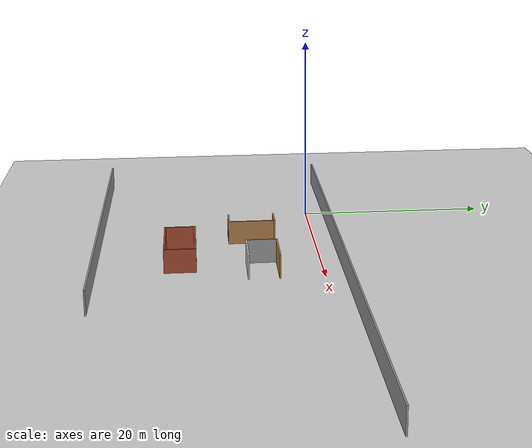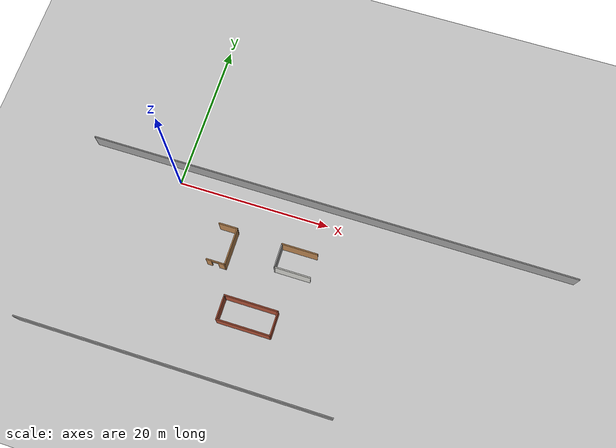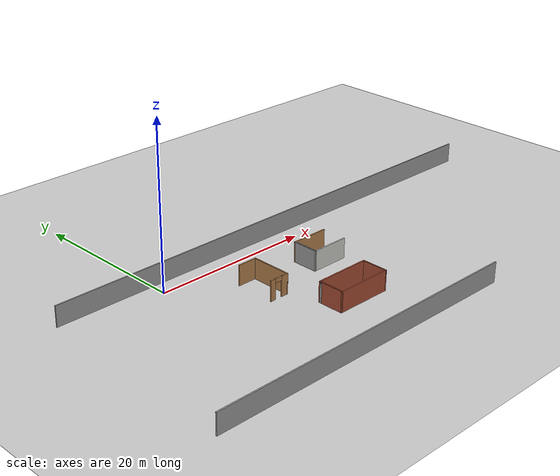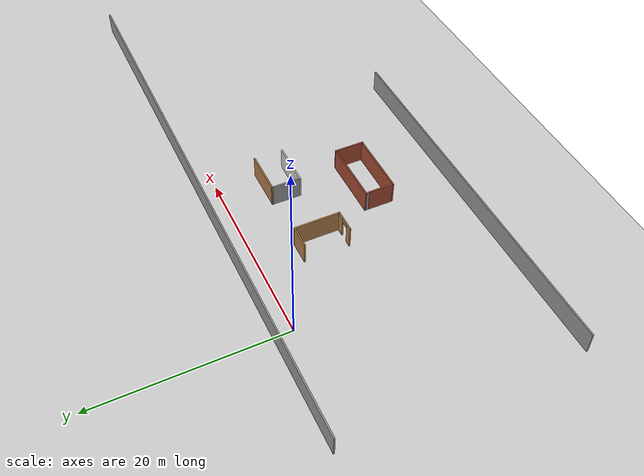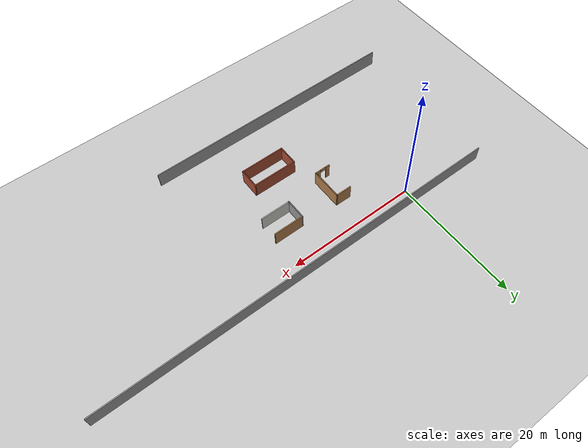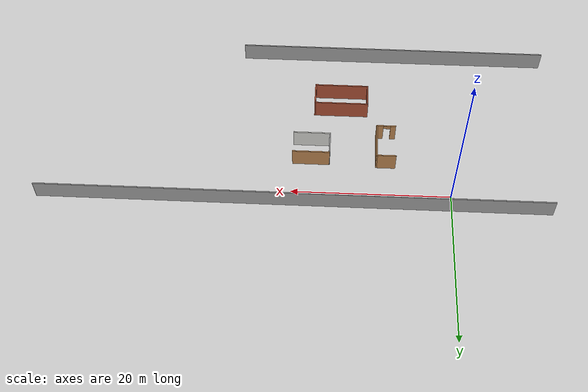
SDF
<sdf version="1.7">
 <world name="default">
  <model name="ground_plane">
   <static>1</static>
   <link name="link">
    <collision name="collision">
     <geometry><plane><normal>0 0 1</normal><size>150 100</size></plane></geometry>
     <surface>
      <contact><collide_bitmask>65535</collide_bitmask></contact>
      <friction><ode><mu>100</mu><mu2>50</mu2></ode></friction>
     </surface>
    </collision>
    <visual name="visual">
     <cast_shadows>0</cast_shadows>
     <geometry><plane><normal>0 0 1</normal><size>150 100</size></plane></geometry>
     <material>
      <script><uri>file://media/materials/scripts/gazebo.material</uri><name>Gazebo/Grey</name></script>
     </material>
    </visual>
   </link>
  </model>
  <model name="slam_world_test.world">
   <link name="Wall_0">
    <pose>0.980896 1.21795 0 0 -0 0</pose>
    <visual name="Wall_0_Visual_2">
     <pose>-0.112099 0 2.25 0 -0 0</pose>
     <geometry><box><size>0.9 0.15 0.5</size></box></geometry>
     <material>
      <script><uri>file://media/materials/scripts/gazebo.material</uri><name>Gazebo/Wood</name></script>
      <ambient>1 1 1 1</ambient>
      <shader type="pixel"/>
     </material>
     <meta><layer>0</layer></meta>
    </visual>
    <visual name="Wall_0_Visual_1">
     <pose>0.79395 0 1.25 0 -0 0</pose>
     <geometry><box><size>0.912099 0.15 2.5</size></box></geometry>
     <material>
      <script><uri>file://media/materials/scripts/gazebo.material</uri><name>Gazebo/Wood</name></script>
      <ambient>1 1 1 1</ambient>
      <shader type="pixel"/>
     </material>
     <meta><layer>0</layer></meta>
    </visual>
    <visual name="Wall_0_Visual_0">
     <pose>-0.90605 0 1.25 0 -0 0</pose>
     <geometry><box><size>0.687901 0.15 2.5</size></box></geometry>
     <material>
      <script><uri>file://media/materials/scripts/gazebo.material</uri><name>Gazebo/Wood</name></script>
      <ambient>1 1 1 1</ambient>
      <shader type="pixel"/>
     </material>
     <meta><layer>0</layer></meta>
    </visual>
    <collision name="Wall_0_Collision_2">
     <pose>-0.112099 0 2.25 0 -0 0</pose>
     <geometry><box><size>0.9 0.15 0.5</size></box></geometry>
     <surface>
      <friction>
       <ode><mu>1</mu><mu2>1</mu2><fdir1>0 0 0</fdir1><slip1>0</slip1><slip2>0</slip2></ode>
       <torsional>
        <coefficient>1</coefficient>
        <patch_radius>0</patch_radius>
        <surface_radius>0</surface_radius>
        <use_patch_radius>1</use_patch_radius>
        <ode><slip>0</slip></ode>
       </torsional>
      </friction>
      <bounce><restitution_coefficient>0</restitution_coefficient><threshold>1e+06</threshold></bounce>
      <contact>
       <collide_without_contact>0</collide_without_contact>
       <collide_without_contact_bitmask>1</collide_without_contact_bitmask>
       <collide_bitmask>1</collide_bitmask>
       <ode>
        <soft_cfm>0</soft_cfm>
        <soft_erp>0.2</soft_erp>
        <kp>1e+13</kp>
        <kd>1</kd>
        <max_vel>0.01</max_vel>
        <min_depth>0</min_depth>
       </ode>
       <bullet>
        <split_impulse>1</split_impulse>
        <split_impulse_penetration_threshold>-0.01</split_impulse_penetration_threshold>
        <soft_cfm>0</soft_cfm>
        <soft_erp>0.2</soft_erp>
        <kp>1e+13</kp>
        <kd>1</kd>
       </bullet>
      </contact>
     </surface>
    </collision>
    <collision name="Wall_0_Collision_0">
     <pose>-0.90605 0 1.25 0 -0 0</pose>
     <geometry><box><size>0.687901 0.15 2.5</size></box></geometry>
     <surface>
      <friction>
       <ode><mu>1</mu><mu2>1</mu2><fdir1>0 0 0</fdir1><slip1>0</slip1><slip2>0</slip2></ode>
       <torsional>
        <coefficient>1</coefficient>
        <patch_radius>0</patch_radius>
        <surface_radius>0</surface_radius>
        <use_patch_radius>1</use_patch_radius>
        <ode><slip>0</slip></ode>
       </torsional>
      </friction>
      <bounce><restitution_coefficient>0</restitution_coefficient><threshold>1e+06</threshold></bounce>
      <contact>
       <collide_without_contact>0</collide_without_contact>
       <collide_without_contact_bitmask>1</collide_without_contact_bitmask>
       <collide_bitmask>1</collide_bitmask>
       <ode>
        <soft_cfm>0</soft_cfm>
        <soft_erp>0.2</soft_erp>
        <kp>1e+13</kp>
        <kd>1</kd>
        <max_vel>0.01</max_vel>
        <min_depth>0</min_depth>
       </ode>
       <bullet>
        <split_impulse>1</split_impulse>
        <split_impulse_penetration_threshold>-0.01</split_impulse_penetration_threshold>
        <soft_cfm>0</soft_cfm>
        <soft_erp>0.2</soft_erp>
        <kp>1e+13</kp>
        <kd>1</kd>
       </bullet>
      </contact>
     </surface>
    </collision>
    <collision name="Wall_0_Collision_1">
     <pose>0.79395 0 1.25 0 -0 0</pose>
     <geometry><box><size>0.912099 0.15 2.5</size></box></geometry>
     <surface>
      <friction>
       <ode><mu>1</mu><mu2>1</mu2><fdir1>0 0 0</fdir1><slip1>0</slip1><slip2>0</slip2></ode>
       <torsional>
        <coefficient>1</coefficient>
        <patch_radius>0</patch_radius>
        <surface_radius>0</surface_radius>
        <use_patch_radius>1</use_patch_radius>
        <ode><slip>0</slip></ode>
       </torsional>
      </friction>
      <bounce><restitution_coefficient>0</restitution_coefficient><threshold>1e+06</threshold></bounce>
      <contact>
       <collide_without_contact>0</collide_without_contact>
       <collide_without_contact_bitmask>1</collide_without_contact_bitmask>
       <collide_bitmask>1</collide_bitmask>
       <ode>
        <soft_cfm>0</soft_cfm>
        <soft_erp>0.2</soft_erp>
        <kp>1e+13</kp>
        <kd>1</kd>
        <max_vel>0.01</max_vel>
        <min_depth>0</min_depth>
       </ode>
       <bullet>
        <split_impulse>1</split_impulse>
        <split_impulse_penetration_threshold>-0.01</split_impulse_penetration_threshold>
        <soft_cfm>0</soft_cfm>
        <soft_erp>0.2</soft_erp>
        <kp>1e+13</kp>
        <kd>1</kd>
       </bullet>
      </contact>
     </surface>
    </collision>
   </link>
   <link name="Wall_1">
    <pose>2.1559 3.64295 0 0 -0 1.5708</pose>
    <visual name="Wall_1_Visual">
     <pose>0 0 1.25 0 -0 0</pose>
     <geometry><box><size>5 0.15 2.5</size></box></geometry>
     <material>
      <script><uri>file://media/materials/scripts/gazebo.material</uri><name>Gazebo/Wood</name></script>
      <ambient>1 1 1 1</ambient>
      <shader type="pixel"/>
     </material>
     <meta><layer>0</layer></meta>
    </visual>
    <collision name="Wall_1_Collision">
     <pose>0 0 1.25 0 -0 0</pose>
     <geometry><box><size>5 0.15 2.5</size></box></geometry>
     <surface>
      <friction>
       <ode><mu>1</mu><mu2>1</mu2><fdir1>0 0 0</fdir1><slip1>0</slip1><slip2>0</slip2></ode>
       <torsional>
        <coefficient>1</coefficient>
        <patch_radius>0</patch_radius>
        <surface_radius>0</surface_radius>
        <use_patch_radius>1</use_patch_radius>
        <ode><slip>0</slip></ode>
       </torsional>
      </friction>
      <bounce><restitution_coefficient>0</restitution_coefficient><threshold>1e+06</threshold></bounce>
      <contact>
       <collide_without_contact>0</collide_without_contact>
       <collide_without_contact_bitmask>1</collide_without_contact_bitmask>
       <collide_bitmask>1</collide_bitmask>
       <ode>
        <soft_cfm>0</soft_cfm>
        <soft_erp>0.2</soft_erp>
        <kp>1e+13</kp>
        <kd>1</kd>
        <max_vel>0.01</max_vel>
        <min_depth>0</min_depth>
       </ode>
       <bullet>
        <split_impulse>1</split_impulse>
        <split_impulse_penetration_threshold>-0.01</split_impulse_penetration_threshold>
        <soft_cfm>0</soft_cfm>
        <soft_erp>0.2</soft_erp>
        <kp>1e+13</kp>
        <kd>1</kd>
       </bullet>
      </contact>
     </surface>
    </collision>
   </link>
   <link name="Wall_11">
    <pose>8.13072 4.30392 0 0 -0 1.5708</pose>
    <visual name="Wall_11_Visual">
     <pose>0 0 1.25 0 -0 0</pose>
     <geometry><box><size>3.25 0.15 2.5</size></box></geometry>
     <material>
      <script><uri>file://media/materials/scripts/gazebo.material</uri><name>Gazebo/Grey</name></script>
      <ambient>1 1 1 1</ambient>
      <shader type="pixel"/>
     </material>
     <meta><layer>0</layer></meta>
    </visual>
    <collision name="Wall_11_Collision">
     <pose>0 0 1.25 0 -0 0</pose>
     <geometry><box><size>3.25 0.15 2.5</size></box></geometry>
     <surface>
      <friction>
       <ode><mu>1</mu><mu2>1</mu2><fdir1>0 0 0</fdir1><slip1>0</slip1><slip2>0</slip2></ode>
       <torsional>
        <coefficient>1</coefficient>
        <patch_radius>0</patch_radius>
        <surface_radius>0</surface_radius>
        <use_patch_radius>1</use_patch_radius>
        <ode><slip>0</slip></ode>
       </torsional>
      </friction>
      <bounce><restitution_coefficient>0</restitution_coefficient><threshold>1e+06</threshold></bounce>
      <contact>
       <collide_without_contact>0</collide_without_contact>
       <collide_without_contact_bitmask>1</collide_without_contact_bitmask>
       <collide_bitmask>1</collide_bitmask>
       <ode>
        <soft_cfm>0</soft_cfm>
        <soft_erp>0.2</soft_erp>
        <kp>1e+13</kp>
        <kd>1</kd>
        <max_vel>0.01</max_vel>
        <min_depth>0</min_depth>
       </ode>
       <bullet>
        <split_impulse>1</split_impulse>
        <split_impulse_penetration_threshold>-0.01</split_impulse_penetration_threshold>
        <soft_cfm>0</soft_cfm>
        <soft_erp>0.2</soft_erp>
        <kp>1e+13</kp>
        <kd>1</kd>
       </bullet>
      </contact>
     </surface>
    </collision>
   </link>
   <link name="Wall_12">
    <pose>10.4307 5.85392 0 0 -0 0</pose>
    <visual name="Wall_12_Visual">
     <pose>0 0 1.25 0 -0 0</pose>
     <geometry><box><size>4.75 0.15 2.5</size></box></geometry>
     <material>
      <script><uri>file://media/materials/scripts/gazebo.material</uri><name>Gazebo/Wood</name></script>
      <ambient>1 1 1 1</ambient>
      <shader type="pixel"/>
     </material>
     <meta><layer>0</layer></meta>
    </visual>
    <collision name="Wall_12_Collision">
     <pose>0 0 1.25 0 -0 0</pose>
     <geometry><box><size>4.75 0.15 2.5</size></box></geometry>
     <surface>
      <friction>
       <ode><mu>1</mu><mu2>1</mu2><fdir1>0 0 0</fdir1><slip1>0</slip1><slip2>0</slip2></ode>
       <torsional>
        <coefficient>1</coefficient>
        <patch_radius>0</patch_radius>
        <surface_radius>0</surface_radius>
        <use_patch_radius>1</use_patch_radius>
        <ode><slip>0</slip></ode>
       </torsional>
      </friction>
      <bounce><restitution_coefficient>0</restitution_coefficient><threshold>1e+06</threshold></bounce>
      <contact>
       <collide_without_contact>0</collide_without_contact>
       <collide_without_contact_bitmask>1</collide_without_contact_bitmask>
       <collide_bitmask>1</collide_bitmask>
       <ode>
        <soft_cfm>0</soft_cfm>
        <soft_erp>0.2</soft_erp>
        <kp>1e+13</kp>
        <kd>1</kd>
        <max_vel>0.01</max_vel>
        <min_depth>0</min_depth>
       </ode>
       <bullet>
        <split_impulse>1</split_impulse>
        <split_impulse_penetration_threshold>-0.01</split_impulse_penetration_threshold>
        <soft_cfm>0</soft_cfm>
        <soft_erp>0.2</soft_erp>
        <kp>1e+13</kp>
        <kd>1</kd>
       </bullet>
      </contact>
     </surface>
    </collision>
   </link>
   <link name="Wall_14">
    <pose>10.4307 2.75392 0 0 -0 3.14159</pose>
    <visual name="Wall_14_Visual">
     <pose>0 0 1.25 0 -0 0</pose>
     <geometry><box><size>4.75 0.15 2.5</size></box></geometry>
     <material>
      <script><uri>file://media/materials/scripts/gazebo.material</uri><name>Gazebo/CeilingTiled</name></script>
      <ambient>1 1 1 1</ambient>
      <shader type="pixel"/>
     </material>
     <meta><layer>0</layer></meta>
    </visual>
    <collision name="Wall_14_Collision">
     <pose>0 0 1.25 0 -0 0</pose>
     <geometry><box><size>4.75 0.15 2.5</size></box></geometry>
     <surface>
      <friction>
       <ode><mu>1</mu><mu2>1</mu2><fdir1>0 0 0</fdir1><slip1>0</slip1><slip2>0</slip2></ode>
       <torsional>
        <coefficient>1</coefficient>
        <patch_radius>0</patch_radius>
        <surface_radius>0</surface_radius>
        <use_patch_radius>1</use_patch_radius>
        <ode><slip>0</slip></ode>
       </torsional>
      </friction>
      <bounce><restitution_coefficient>0</restitution_coefficient><threshold>1e+06</threshold></bounce>
      <contact>
       <collide_without_contact>0</collide_without_contact>
       <collide_without_contact_bitmask>1</collide_without_contact_bitmask>
       <collide_bitmask>1</collide_bitmask>
       <ode>
        <soft_cfm>0</soft_cfm>
        <soft_erp>0.2</soft_erp>
        <kp>1e+13</kp>
        <kd>1</kd>
        <max_vel>0.01</max_vel>
        <min_depth>0</min_depth>
       </ode>
       <bullet>
        <split_impulse>1</split_impulse>
        <split_impulse_penetration_threshold>-0.01</split_impulse_penetration_threshold>
        <soft_cfm>0</soft_cfm>
        <soft_erp>0.2</soft_erp>
        <kp>1e+13</kp>
        <kd>1</kd>
       </bullet>
      </contact>
     </surface>
    </collision>
   </link>
   <link name="Wall_2">
    <pose>0.980896 6.06795 0 0 -0 3.14159</pose>
    <visual name="Wall_2_Visual">
     <pose>0 0 1.25 0 -0 0</pose>
     <geometry><box><size>2.5 0.15 2.5</size></box></geometry>
     <material>
      <script><uri>file://media/materials/scripts/gazebo.material</uri><name>Gazebo/Wood</name></script>
      <ambient>1 1 1 1</ambient>
      <shader type="pixel"/>
     </material>
     <meta><layer>0</layer></meta>
    </visual>
    <collision name="Wall_2_Collision">
     <pose>0 0 1.25 0 -0 0</pose>
     <geometry><box><size>2.5 0.15 2.5</size></box></geometry>
     <surface>
      <friction>
       <ode><mu>1</mu><mu2>1</mu2><fdir1>0 0 0</fdir1><slip1>0</slip1><slip2>0</slip2></ode>
       <torsional>
        <coefficient>1</coefficient>
        <patch_radius>0</patch_radius>
        <surface_radius>0</surface_radius>
        <use_patch_radius>1</use_patch_radius>
        <ode><slip>0</slip></ode>
       </torsional>
      </friction>
      <bounce><restitution_coefficient>0</restitution_coefficient><threshold>1e+06</threshold></bounce>
      <contact>
       <collide_without_contact>0</collide_without_contact>
       <collide_without_contact_bitmask>1</collide_without_contact_bitmask>
       <collide_bitmask>1</collide_bitmask>
       <ode>
        <soft_cfm>0</soft_cfm>
        <soft_erp>0.2</soft_erp>
        <kp>1e+13</kp>
        <kd>1</kd>
        <max_vel>0.01</max_vel>
        <min_depth>0</min_depth>
       </ode>
       <bullet>
        <split_impulse>1</split_impulse>
        <split_impulse_penetration_threshold>-0.01</split_impulse_penetration_threshold>
        <soft_cfm>0</soft_cfm>
        <soft_erp>0.2</soft_erp>
        <kp>1e+13</kp>
        <kd>1</kd>
       </bullet>
      </contact>
     </surface>
    </collision>
   </link>
   <link name="Wall_24">
    <pose>3.3842 -4.07922 0 0 0 -1.5708</pose>
    <visual name="Wall_24_Visual">
     <pose>0 0 1.25 0 -0 0</pose>
     <geometry><box><size>3 0.15 2.5</size></box></geometry>
     <material>
      <script><uri>file://media/materials/scripts/gazebo.material</uri><name>Gazebo/Bricks</name></script>
      <ambient>1 1 1 1</ambient>
      <shader type="pixel"/>
     </material>
     <meta><layer>0</layer></meta>
    </visual>
    <collision name="Wall_24_Collision">
     <pose>0 0 1.25 0 -0 0</pose>
     <geometry><box><size>3 0.15 2.5</size></box></geometry>
     <surface>
      <friction>
       <ode><mu>1</mu><mu2>1</mu2><fdir1>0 0 0</fdir1><slip1>0</slip1><slip2>0</slip2></ode>
       <torsional>
        <coefficient>1</coefficient>
        <patch_radius>0</patch_radius>
        <surface_radius>0</surface_radius>
        <use_patch_radius>1</use_patch_radius>
        <ode><slip>0</slip></ode>
       </torsional>
      </friction>
      <bounce><restitution_coefficient>0</restitution_coefficient><threshold>1e+06</threshold></bounce>
      <contact>
       <collide_without_contact>0</collide_without_contact>
       <collide_without_contact_bitmask>1</collide_without_contact_bitmask>
       <collide_bitmask>1</collide_bitmask>
       <ode>
        <soft_cfm>0</soft_cfm>
        <soft_erp>0.2</soft_erp>
        <kp>1e+13</kp>
        <kd>1</kd>
        <max_vel>0.01</max_vel>
        <min_depth>0</min_depth>
       </ode>
       <bullet>
        <split_impulse>1</split_impulse>
        <split_impulse_penetration_threshold>-0.01</split_impulse_penetration_threshold>
        <soft_cfm>0</soft_cfm>
        <soft_erp>0.2</soft_erp>
        <kp>1e+13</kp>
        <kd>1</kd>
       </bullet>
      </contact>
     </surface>
    </collision>
   </link>
   <link name="Wall_25">
    <pose>6.80919 -5.50422 0 0 -0 0</pose>
    <visual name="Wall_25_Visual">
     <pose>0 0 1.25 0 -0 0</pose>
     <geometry><box><size>7 0.15 2.5</size></box></geometry>
     <material>
      <script><uri>file://media/materials/scripts/gazebo.material</uri><name>Gazebo/Bricks</name></script>
      <ambient>1 1 1 1</ambient>
      <shader type="pixel"/>
     </material>
     <meta><layer>0</layer></meta>
    </visual>
    <collision name="Wall_25_Collision">
     <pose>0 0 1.25 0 -0 0</pose>
     <geometry><box><size>7 0.15 2.5</size></box></geometry>
     <surface>
      <friction>
       <ode><mu>1</mu><mu2>1</mu2><fdir1>0 0 0</fdir1><slip1>0</slip1><slip2>0</slip2></ode>
       <torsional>
        <coefficient>1</coefficient>
        <patch_radius>0</patch_radius>
        <surface_radius>0</surface_radius>
        <use_patch_radius>1</use_patch_radius>
        <ode><slip>0</slip></ode>
       </torsional>
      </friction>
      <bounce><restitution_coefficient>0</restitution_coefficient><threshold>1e+06</threshold></bounce>
      <contact>
       <collide_without_contact>0</collide_without_contact>
       <collide_without_contact_bitmask>1</collide_without_contact_bitmask>
       <collide_bitmask>1</collide_bitmask>
       <ode>
        <soft_cfm>0</soft_cfm>
        <soft_erp>0.2</soft_erp>
        <kp>1e+13</kp>
        <kd>1</kd>
        <max_vel>0.01</max_vel>
        <min_depth>0</min_depth>
       </ode>
       <bullet>
        <split_impulse>1</split_impulse>
        <split_impulse_penetration_threshold>-0.01</split_impulse_penetration_threshold>
        <soft_cfm>0</soft_cfm>
        <soft_erp>0.2</soft_erp>
        <kp>1e+13</kp>
        <kd>1</kd>
       </bullet>
      </contact>
     </surface>
    </collision>
   </link>
   <link name="Wall_26">
    <pose>10.2342 -3.95422 0 0 -0 1.5708</pose>
    <visual name="Wall_26_Visual">
     <pose>0 0 1.25 0 -0 0</pose>
     <geometry><box><size>3.25 0.15 2.5</size></box></geometry>
     <material>
      <script><uri>file://media/materials/scripts/gazebo.material</uri><name>Gazebo/Bricks</name></script>
      <ambient>1 1 1 1</ambient>
      <shader type="pixel"/>
     </material>
     <meta><layer>0</layer></meta>
    </visual>
    <collision name="Wall_26_Collision">
     <pose>0 0 1.25 0 -0 0</pose>
     <geometry><box><size>3.25 0.15 2.5</size></box></geometry>
     <surface>
      <friction>
       <ode><mu>1</mu><mu2>1</mu2><fdir1>0 0 0</fdir1><slip1>0</slip1><slip2>0</slip2></ode>
       <torsional>
        <coefficient>1</coefficient>
        <patch_radius>0</patch_radius>
        <surface_radius>0</surface_radius>
        <use_patch_radius>1</use_patch_radius>
        <ode><slip>0</slip></ode>
       </torsional>
      </friction>
      <bounce><restitution_coefficient>0</restitution_coefficient><threshold>1e+06</threshold></bounce>
      <contact>
       <collide_without_contact>0</collide_without_contact>
       <collide_without_contact_bitmask>1</collide_without_contact_bitmask>
       <collide_bitmask>1</collide_bitmask>
       <ode>
        <soft_cfm>0</soft_cfm>
        <soft_erp>0.2</soft_erp>
        <kp>1e+13</kp>
        <kd>1</kd>
        <max_vel>0.01</max_vel>
        <min_depth>0</min_depth>
       </ode>
       <bullet>
        <split_impulse>1</split_impulse>
        <split_impulse_penetration_threshold>-0.01</split_impulse_penetration_threshold>
        <soft_cfm>0</soft_cfm>
        <soft_erp>0.2</soft_erp>
        <kp>1e+13</kp>
        <kd>1</kd>
       </bullet>
      </contact>
     </surface>
    </collision>
   </link>
   <link name="Wall_27">
    <pose>6.80919 -2.40422 0 0 -0 3.14159</pose>
    <visual name="Wall_27_Visual">
     <pose>0 0 1.25 0 -0 0</pose>
     <geometry><box><size>7 0.15 2.5</size></box></geometry>
     <material>
      <script><uri>file://media/materials/scripts/gazebo.material</uri><name>Gazebo/Bricks</name></script>
      <ambient>1 1 1 1</ambient>
      <shader type="pixel"/>
     </material>
     <meta><layer>0</layer></meta>
    </visual>
    <collision name="Wall_27_Collision">
     <pose>0 0 1.25 0 -0 0</pose>
     <geometry><box><size>7 0.15 2.5</size></box></geometry>
     <surface>
      <friction>
       <ode><mu>1</mu><mu2>1</mu2><fdir1>0 0 0</fdir1><slip1>0</slip1><slip2>0</slip2></ode>
       <torsional>
        <coefficient>1</coefficient>
        <patch_radius>0</patch_radius>
        <surface_radius>0</surface_radius>
        <use_patch_radius>1</use_patch_radius>
        <ode><slip>0</slip></ode>
       </torsional>
      </friction>
      <bounce><restitution_coefficient>0</restitution_coefficient><threshold>1e+06</threshold></bounce>
      <contact>
       <collide_without_contact>0</collide_without_contact>
       <collide_without_contact_bitmask>1</collide_without_contact_bitmask>
       <collide_bitmask>1</collide_bitmask>
       <ode>
        <soft_cfm>0</soft_cfm>
        <soft_erp>0.2</soft_erp>
        <kp>1e+13</kp>
        <kd>1</kd>
        <max_vel>0.01</max_vel>
        <min_depth>0</min_depth>
       </ode>
       <bullet>
        <split_impulse>1</split_impulse>
        <split_impulse_penetration_threshold>-0.01</split_impulse_penetration_threshold>
        <soft_cfm>0</soft_cfm>
        <soft_erp>0.2</soft_erp>
        <kp>1e+13</kp>
        <kd>1</kd>
       </bullet>
      </contact>
     </surface>
    </collision>
   </link>
   <link name="Wall_28">
    <pose>3.3842 -2.52922 0 0 0 -1.5708</pose>
    <visual name="Wall_28_Visual">
     <pose>0 0 1.25 0 -0 0</pose>
     <geometry><box><size>0.4 0.15 2.5</size></box></geometry>
     <material>
      <script><uri>file://media/materials/scripts/gazebo.material</uri><name>Gazebo/Grey</name></script>
      <ambient>1 1 1 1</ambient>
      <shader type="pixel"/>
     </material>
     <meta><layer>0</layer></meta>
    </visual>
    <collision name="Wall_28_Collision">
     <pose>0 0 1.25 0 -0 0</pose>
     <geometry><box><size>0.4 0.15 2.5</size></box></geometry>
     <surface>
      <friction>
       <ode><mu>1</mu><mu2>1</mu2><fdir1>0 0 0</fdir1><slip1>0</slip1><slip2>0</slip2></ode>
       <torsional>
        <coefficient>1</coefficient>
        <patch_radius>0</patch_radius>
        <surface_radius>0</surface_radius>
        <use_patch_radius>1</use_patch_radius>
        <ode><slip>0</slip></ode>
       </torsional>
      </friction>
      <bounce><restitution_coefficient>0</restitution_coefficient><threshold>1e+06</threshold></bounce>
      <contact>
       <collide_without_contact>0</collide_without_contact>
       <collide_without_contact_bitmask>1</collide_without_contact_bitmask>
       <collide_bitmask>1</collide_bitmask>
       <ode>
        <soft_cfm>0</soft_cfm>
        <soft_erp>0.2</soft_erp>
        <kp>1e+13</kp>
        <kd>1</kd>
        <max_vel>0.01</max_vel>
        <min_depth>0</min_depth>
       </ode>
       <bullet>
        <split_impulse>1</split_impulse>
        <split_impulse_penetration_threshold>-0.01</split_impulse_penetration_threshold>
        <soft_cfm>0</soft_cfm>
        <soft_erp>0.2</soft_erp>
        <kp>1e+13</kp>
        <kd>1</kd>
       </bullet>
      </contact>
     </surface>
    </collision>
   </link>
   <link name="Wall_31">
    <pose>0.009934 -12.4349 0 0 -0 0</pose>
    <visual name="Wall_31_Visual">
     <pose>0 0 1.25 0 -0 0</pose>
     <geometry><box><size>40.5 0.15 2.5</size></box></geometry>
     <material>
      <script><uri>file://media/materials/scripts/gazebo.material</uri><name>Gazebo/Grey</name></script>
      <ambient>1 1 1 1</ambient>
      <shader type="pixel"/>
     </material>
     <meta><layer>0</layer></meta>
    </visual>
    <collision name="Wall_31_Collision">
     <pose>0 0 1.25 0 -0 0</pose>
     <geometry><box><size>40.5 0.15 2.5</size></box></geometry>
     <surface>
      <friction>
       <ode><mu>1</mu><mu2>1</mu2><fdir1>0 0 0</fdir1><slip1>0</slip1><slip2>0</slip2></ode>
       <torsional>
        <coefficient>1</coefficient>
        <patch_radius>0</patch_radius>
        <surface_radius>0</surface_radius>
        <use_patch_radius>1</use_patch_radius>
        <ode><slip>0</slip></ode>
       </torsional>
      </friction>
      <bounce><restitution_coefficient>0</restitution_coefficient><threshold>1e+06</threshold></bounce>
      <contact>
       <collide_without_contact>0</collide_without_contact>
       <collide_without_contact_bitmask>1</collide_without_contact_bitmask>
       <collide_bitmask>1</collide_bitmask>
       <ode>
        <soft_cfm>0</soft_cfm>
        <soft_erp>0.2</soft_erp>
        <kp>1e+13</kp>
        <kd>1</kd>
        <max_vel>0.01</max_vel>
        <min_depth>0</min_depth>
       </ode>
       <bullet>
        <split_impulse>1</split_impulse>
        <split_impulse_penetration_threshold>-0.01</split_impulse_penetration_threshold>
        <soft_cfm>0</soft_cfm>
        <soft_erp>0.2</soft_erp>
        <kp>1e+13</kp>
        <kd>1</kd>
       </bullet>
      </contact>
     </surface>
    </collision>
   </link>
   <link name="Wall_31_clone_0">
    <pose>12.432 12.3861 0 0 -0 0</pose>
    <inertial>
     <mass>1</mass>
     <inertia><ixx>1</ixx><ixy>0</ixy><ixz>0</ixz><iyy>1</iyy><iyz>0</iyz><izz>1</izz></inertia>
    </inertial>
    <visual name="Wall_31_Visual">
     <pose>0 0 1.25 0 -0 0</pose>
     <geometry><box><size>64 0.15 2.5</size></box></geometry>
     <material>
      <script><uri>file://media/materials/scripts/gazebo.material</uri><name>Gazebo/Grey</name></script>
      <ambient>1 1 1 1</ambient>
      <shader type="pixel"><normal_map>__default__</normal_map></shader>
      <diffuse>0.7 0.7 0.7 1</diffuse>
      <specular>0.01 0.01 0.01 1</specular>
      <emissive>0 0 0 1</emissive>
     </material>
     <meta><layer>0</layer></meta>
    </visual>
    <collision name="Wall_31_Collision">
     <pose>0 0 1.25 0 -0 0</pose>
     <geometry><box><size>64 0.15 2.5</size></box></geometry>
     <surface>
      <friction>
       <ode><mu>1</mu><mu2>1</mu2><fdir1>0 0 0</fdir1><slip1>0</slip1><slip2>0</slip2></ode>
       <torsional>
        <coefficient>1</coefficient>
        <patch_radius>0</patch_radius>
        <surface_radius>0</surface_radius>
        <use_patch_radius>1</use_patch_radius>
        <ode><slip>0</slip></ode>
       </torsional>
      </friction>
      <bounce><restitution_coefficient>0</restitution_coefficient><threshold>1e+06</threshold></bounce>
      <contact>
       <collide_without_contact>0</collide_without_contact>
       <collide_without_contact_bitmask>1</collide_without_contact_bitmask>
       <collide_bitmask>1</collide_bitmask>
       <ode>
        <soft_cfm>0</soft_cfm>
        <soft_erp>0.2</soft_erp>
        <kp>1e+13</kp>
        <kd>1</kd>
        <max_vel>0.01</max_vel>
        <min_depth>0</min_depth>
       </ode>
       <bullet>
        <split_impulse>1</split_impulse>
        <split_impulse_penetration_threshold>-0.01</split_impulse_penetration_threshold>
        <soft_cfm>0</soft_cfm>
        <soft_erp>0.2</soft_erp>
        <kp>1e+13</kp>
        <kd>1</kd>
       </bullet>
      </contact>
     </surface>
    </collision>
   </link>
   <static>1</static>
   <pose>7.19162 -10.3857 0 0 -0 0</pose>
  </model>
 </world>
</sdf>
